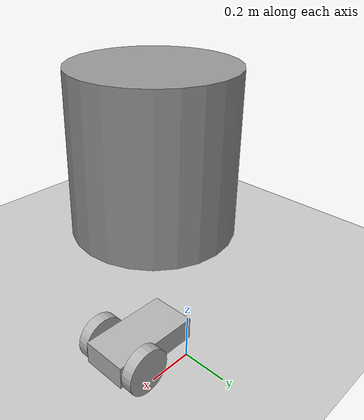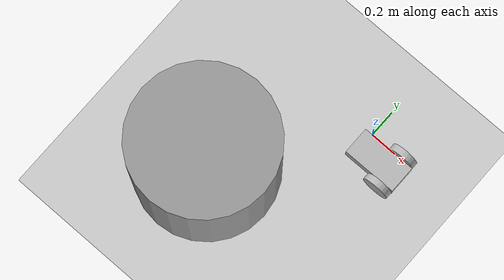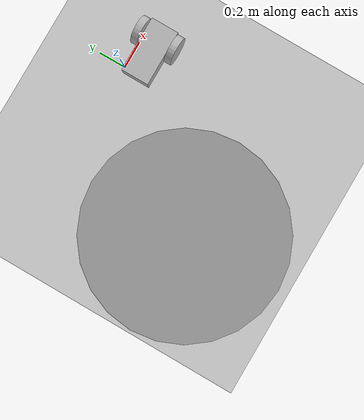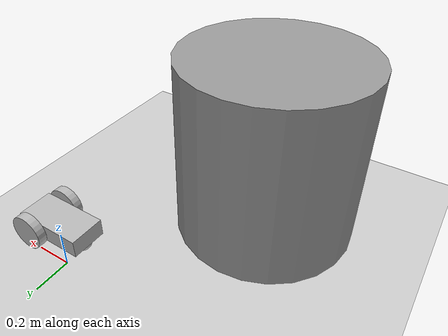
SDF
<sdf version="1.7">
 <world name="default">
  <light name="sun" type="directional">
   <pose>0 0 10 0 -0 0</pose>
   <diffuse>0.8 0.8 0.8 1</diffuse>
   <specular>0.2 0.2 0.2 1</specular>
   <attenuation>
    <range>1000</range>
    <constant>0.9</constant>
    <linear>0.01</linear>
    <quadratic>0.001</quadratic>
   </attenuation>
   <direction>-0.5 0.1 -0.9</direction>
   <spot><inner_angle>0</inner_angle><outer_angle>0</outer_angle><falloff>0</falloff></spot>
  </light>
  <model name="ground_plane">
   <static>1</static>
   <link name="link">
    <collision name="collision">
     <geometry><plane><normal>0 0 1</normal><size>100 100</size></plane></geometry>
     <surface>
      <contact><collide_bitmask>65535</collide_bitmask></contact>
      <friction><ode><mu>100</mu><mu2>50</mu2></ode></friction>
     </surface>
    </collision>
    <visual name="visual">
     <cast_shadows>0</cast_shadows>
     <geometry><plane><normal>0 0 1</normal><size>100 100</size></plane></geometry>
     <material>
      <script><uri>file://media/materials/scripts/gazebo.material</uri><name>Gazebo/Grey</name></script>
     </material>
    </visual>
   </link>
  </model>
  <gravity>0 0 -9.8</gravity>
  <magnetic_field>6e-06 2.3e-05 -4.2e-05</magnetic_field>
  <atmosphere type="adiabatic"/>
  <physics type="ode">
   <max_step_size>0.001</max_step_size>
   <real_time_factor>1</real_time_factor>
   <real_time_update_rate>1000</real_time_update_rate>
  </physics>
  <scene><ambient>0.4 0.4 0.4 1</ambient><background>0.7 0.7 0.7 1</background><shadows>1</shadows></scene>
  <spherical_coordinates>
   <surface_model>EARTH_WGS84</surface_model>
   <latitude_deg>0</latitude_deg>
   <longitude_deg>0</longitude_deg>
   <elevation>0</elevation>
   <heading_deg>0</heading_deg>
  </spherical_coordinates>
  <model name="Turtle1">
   <static>1</static>
   <link name="chassis">
    <pose>0 0 0.1 0 -0 0</pose>
    <collision name="collision"><geometry><box><size>0.4 0.2 0.1</size></box></geometry></collision>
    <visual name="visual"><geometry><box><size>0.4 0.2 0.1</size></box></geometry></visual>
    <collision name="caster_collision">
     <pose>-0.15 0 -0.05 0 -0 0</pose>
     <geometry><sphere><radius>0.05</radius></sphere></geometry>
     <surface><friction><ode><mu>0</mu><mu2>0</mu2><slip1>1</slip1><slip2>1</slip2></ode></friction></surface>
    </collision>
    <visual name="caster_visual">
     <pose>-0.15 0 -0.05 0 -0 0</pose>
     <geometry><sphere><radius>0.05</radius></sphere></geometry>
    </visual>
   </link>
   <link name="left_wheel">
    <pose>0.1 0.13 0.1 -0 1.5707 1.5707</pose>
    <collision name="collision">
     <geometry><cylinder><radius>0.1</radius><length>0.05</length></cylinder></geometry>
    </collision>
    <visual name="visual">
     <geometry><cylinder><radius>0.1</radius><length>0.05</length></cylinder></geometry>
    </visual>
   </link>
   <link name="right_wheel">
    <pose>0.1 -0.13 0.1 -0 1.5707 1.5707</pose>
    <collision name="collision">
     <geometry><cylinder><radius>0.1</radius><length>0.05</length></cylinder></geometry>
    </collision>
    <visual name="visual">
     <geometry><cylinder><radius>0.1</radius><length>0.05</length></cylinder></geometry>
    </visual>
   </link>
   <pose>0.15386 -0.124879 0 0 -0 0</pose>
  </model>
  <model name="unit_cylinder">
   <pose>-0.682168 -0.882747 0.499997 3e-06 4e-06 -0</pose>
   <link name="link">
    <inertial>
     <mass>1</mass>
     <inertia><ixx>0.145833</ixx><ixy>0</ixy><ixz>0</ixz><iyy>0.145833</iyy><iyz>0</iyz><izz>0.125</izz></inertia>
    </inertial>
    <collision name="collision">
     <geometry><cylinder><radius>0.5</radius><length>1</length></cylinder></geometry>
    </collision>
    <visual name="visual">
     <geometry><cylinder><radius>0.5</radius><length>1</length></cylinder></geometry>
     <material>
      <script><name>Gazebo/Grey</name><uri>file://media/materials/scripts/gazebo.material</uri></script>
     </material>
    </visual>
   </link>
   <plugin name="diff_drive" filename="libgazebo_ros_diff_drive.so">
    <ros>
     <namespace>/demo</namespace>
     <remapping>cmd_vel:=cmd_demo</remapping>
     <remapping>odom:=odom_demo</remapping>
    </ros>
    <publish_odom>true</publish_odom>
    <publish_odom_tf>true</publish_odom_tf>
    <publish_wheel_tf>true</publish_wheel_tf>
    <odometry_frame>odom_demo</odometry_frame>
    <robot_base_frame>chassis</robot_base_frame>
   </plugin>
  </model>
 </world>
</sdf>
